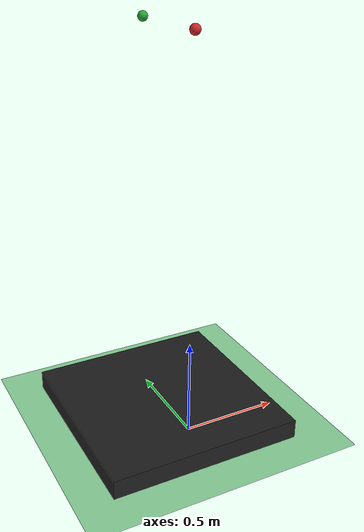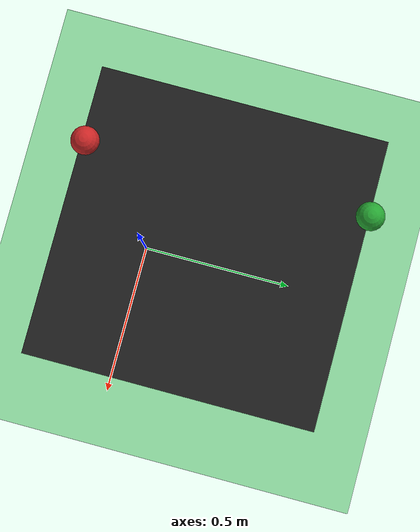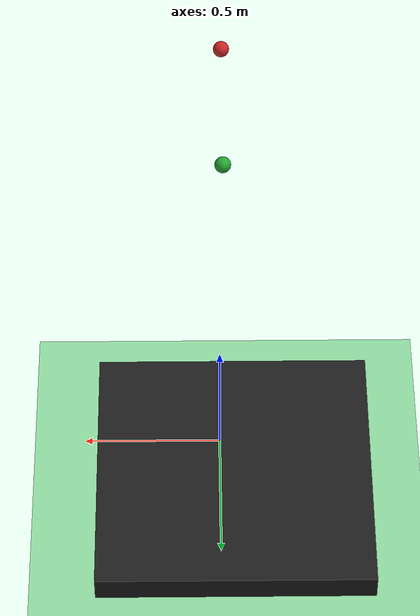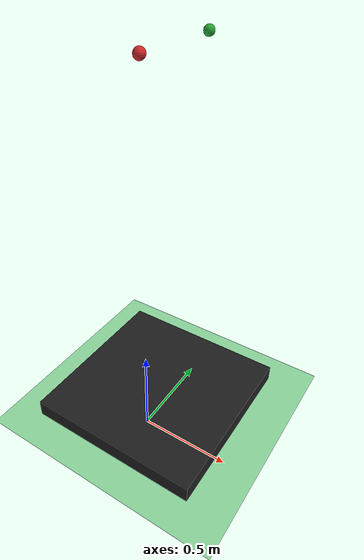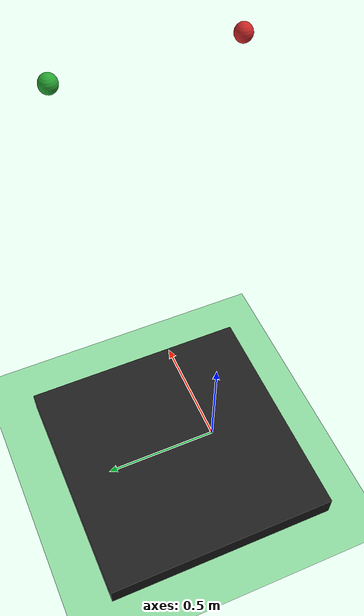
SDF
<?xml version="1.0" ?>
<sdf version="1.5">
  <world name="default">
    <!-- A global light source -->
    <include>
      <uri>model://sun</uri>
    </include>
    <!-- A ground plane -->
    <include>
      <uri>model://green_ground</uri>
    </include>
    <!-- Sphere D 50mm -->
    <include>
      <uri>model://sphere50</uri>
      <pose>0 0.0 2.0 0 0 0</pose>
    </include>
    <!-- Sphere D 50mm no collision-->
    <include>
      <uri>model://green_sphere50_no_collision</uri>
      <pose>0 0.5 2.0 0 0 0</pose>
    </include>
    <!-- Table Top -->
    <include>
      <uri>model://tabletop</uri>
      <pose>-0.05 0.2 0.05 0 0 0</pose>
    </include>
    <physics type = "ode">
        <max_step_size>0.001</max_step_size>
        <real_time_factor>1</real_time_factor>
        <real_time_update_rate>1000</real_time_update_rate>
    </physics>
  </world>
</sdf>

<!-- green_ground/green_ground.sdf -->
<sdf version="1.5">
  <model name="green_ground">
    <static>true</static>
    <link name="link">
      <collision name="collision">
        <geometry>
          <plane>
            <normal>0 0 1</normal>
            <size>100 100</size>
          </plane>
        </geometry>
        <surface>
          <friction>
            <ode>
              <mu>100</mu>
              <mu2>50</mu2>
            </ode>
          </friction>
        </surface>
      </collision>
      <visual name="visual">
        <geometry>
          <plane>
            <normal>0 0 1</normal>
            <size>100 100</size>
          </plane>
        </geometry>
        <material>
          <ambient>0.56 0.86 0.63 1</ambient>
          <diffuse>0.56 0.86 0.63 1</diffuse>
        </material>
      </visual>
    </link>
  </model>
</sdf>

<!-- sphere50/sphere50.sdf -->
<sdf version="1.5">
  <model name="sphere50">
    <link name="link">
      <pose>0 0 0.0 0 0 0</pose>
      <inertial>
        <mass>1.0</mass>
        <inertia>
          <ixx>0.27</ixx>
          <ixy>0</ixy>
          <ixz>0</ixz>
          <iyy>0.27</iyy>
          <iyz>0</iyz>
          <izz>0.27</izz>
        </inertia>
      </inertial>
      <self_collide>0</self_collide>
      <kinematic>0</kinematic>
      <gravity>0</gravity>

      <collision name="collision">
        <geometry>
          <sphere>
            <radius>0.025</radius>
          </sphere>
        </geometry>
        <surface>
          <contact>
            <collide_without_contact>1</collide_without_contact>
          </contact>
        </surface>
      </collision>

      <visual name="visual">
        <geometry>
          <sphere>
            <radius>0.025</radius>
          </sphere>
        </geometry>
        <material>
          <script>
            <uri>file://media/materials/scripts/gazebo.material</uri>
            <name>Gazebo/Red</name>
          </script>
        </material>
      </visual>

    </link>
  </model>
</sdf>

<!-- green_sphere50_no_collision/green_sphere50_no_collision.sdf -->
<sdf version="1.5">
  <model name="green_sphere50_no_collision">
    <link name="link">
      <pose>0 0 0.0 0 0 0</pose>
      <inertial>
        <mass>1.0</mass>
        <inertia>
          <ixx>0.27</ixx>
          <ixy>0</ixy>
          <ixz>0</ixz>
          <iyy>0.27</iyy>
          <iyz>0</iyz>
          <izz>0.27</izz>
        </inertia>
      </inertial>
      <self_collide>0</self_collide>
      <kinematic>0</kinematic>
      <gravity>0</gravity>

      <visual name="visual">
        <geometry>
          <sphere>
            <radius>0.025</radius>
          </sphere>
        </geometry>
        <material>
          <script>
            <uri>file://media/materials/scripts/gazebo.material</uri>
            <name>Gazebo/Green</name>
          </script>
        </material>
      </visual>

    </link>
  </model>
</sdf>

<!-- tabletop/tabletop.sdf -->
<sdf version="1.5">
  <model name="tabletop">
    <link name="link">
      <pose>0 0 0.0 0 0 0</pose>
      <inertial>
        <mass>1.0</mass>
        <inertia>
          <ixx>0.27</ixx>
          <ixy>0</ixy>
          <ixz>0</ixz>
          <iyy>0.27</iyy>
          <iyz>0</iyz>
          <izz>0.27</izz>
        </inertia>
      </inertial>
      <self_collide>0</self_collide>
      <kinematic>0</kinematic>
      <gravity>0</gravity>

      <collision name="collision">
        <geometry>
          <box>
            <size>1.0 1.0 0.1</size>
          </box>
        </geometry>
        <surface>
          <contact>
            <collide_without_contact>1</collide_without_contact>
          </contact>
        </surface>
      </collision>

      <visual name="visual">
        <geometry>
          <box>
            <size>1.0 1.0 0.1</size>
          </box>
        </geometry>
        <material>
          <script>
            <uri>file://media/materials/scripts/gazebo.material</uri>
            <name>Gazebo/Black</name>
          </script>
        </material>
      </visual>

    </link>
  </model>
</sdf>
